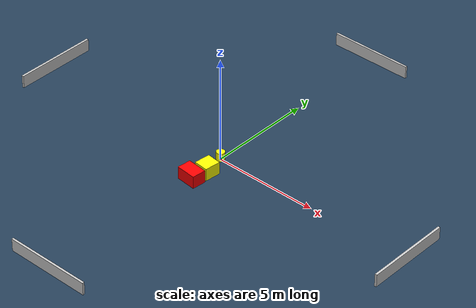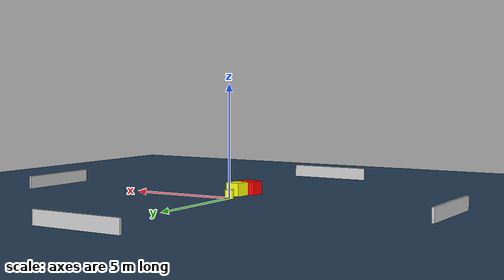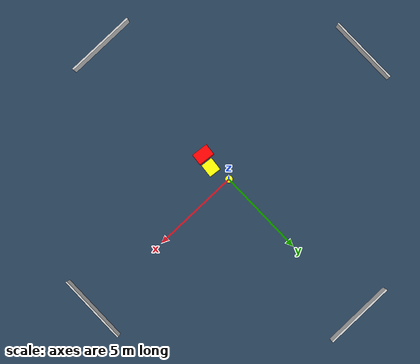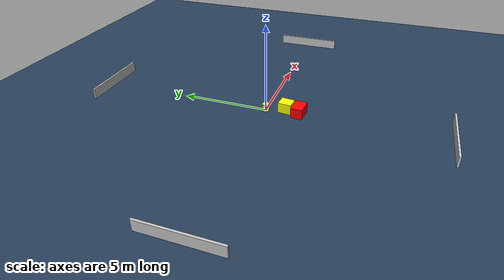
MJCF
<?xml version="1.0" ?>
<mujoco model="generated_environment">
  <option timestep="0.01" integrator="RK4" cone="elliptic"/>
  <default>
    <geom density="1"/>
  </default>
  <asset>
    <texture builtin="gradient" height="3072" name="skybox" rgb1="0.3 0.5 0.7" rgb2="0 0 0" type="skybox" width="512"/>
    <texture builtin="checker" height="300" name="groundplane" rgb1="0.2 0.3 0.4" rgb2="0.1 0.2 0.3" type="2d" width="300"/>
    <material name="groundplane" reflectance="0.2" texrepeat="5 5" texture="groundplane"/>
  </asset>
  <worldbody>
    <light dir="0 0 -1" directional="true" pos="0 0 1.5"/>
    <geom condim="3" friction="0.5 0.005 0.001" material="groundplane" name="floor" pos="0 0 0" size="0 0 0.05" type="plane"/>
    <body name="walls">
      <geom name="wall_1" condim="4" pos="-10.0 0.0 0.3" rgba="0.800000011920929 0.800000011920929 0.800000011920929 1.0" size="0.05 2.0 0.3" type="box"/>
      <geom name="wall_2" condim="4" pos="10.0 0.0 0.3" rgba="0.800000011920929 0.800000011920929 0.800000011920929 1.0" size="0.05 2.0 0.3" type="box"/>
      <geom name="wall_3" condim="4" pos="0.0 -10.0 0.3" rgba="0.800000011920929 0.800000011920929 0.800000011920929 1.0" size="2.0 0.05 0.3" type="box"/>
      <geom name="wall_4" condim="4" pos="0.0 10.0 0.3" rgba="0.800000011920929 0.800000011920929 0.800000011920929 1.0" size="2.0 0.05 0.3" type="box"/>
    </body>
    <body name="robot">
      <joint name="joint_x" type="slide" pos="0 0 0" axis="1 0 0"/>
      <joint name="joint_y" type="slide" pos="0 0 0" axis="0 1 0"/>
      <geom name="robot" type="cylinder" pos="0.0 0.0 0.2" size="0.2 0.2 0.0" mass="5.0" friction="1.0 0.005 0.0001" condim="4" rgba="1.0 1.0 0.0 1.0"/>
    </body>
    <body name="obstacle_1_movable">
      <geom name="obstacle_1_movable" condim="4" pos="0.2769088928144364 -1.1150598258462143 0.3" euler="0 0 84.15283978285107" friction="0.0 0.005 0.001" rgba="1.0 1.0 0.0 1.0" size="0.3755509577677225 0.3394378766122965 0.3" type="box" mass="0.1"/>
      <joint type="free"/>
    </body>
    <body name="obstacle_2_static">
      <geom name="obstacle_2_static" condim="4" pos="0.10059024514868475 -1.89342226759857 0.3" euler="0 0 84.41104324128399" friction="0.0 0.005 0.001" rgba="1.0 0.0 0.0 1.0" size="0.32443947910618676 0.4727122948435496 0.3" type="box"/>
    </body>
  </worldbody>
  <actuator>
    <motor name="actuator_x" joint="joint_x" gear="1" ctrlrange="-1 1"/>
    <motor name="actuator_y" joint="joint_y" gear="1" ctrlrange="-1 1"/>
  </actuator>
</mujoco>
